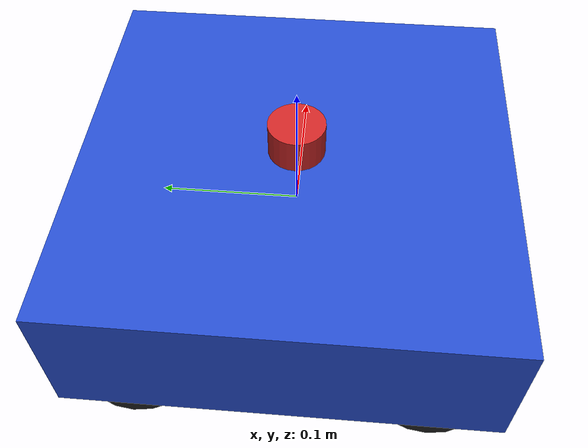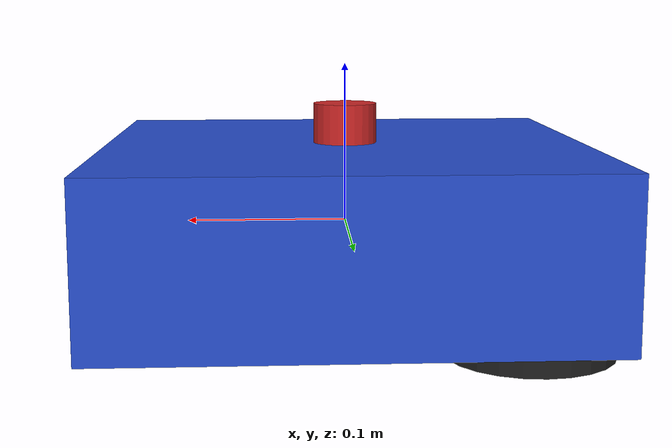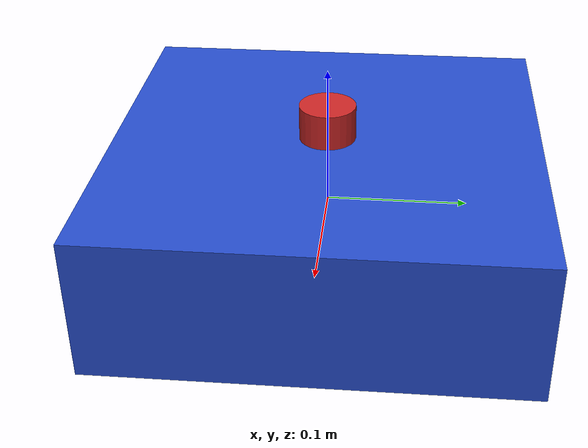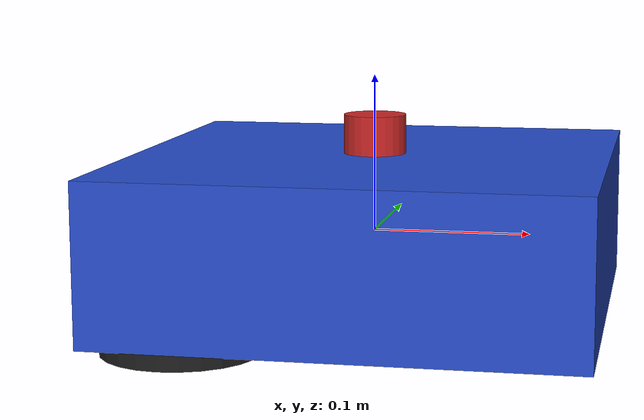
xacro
<?xml version="1.0"?>
<robot xmlns:xacro="http://ros.org/wiki/xacro" name="robot">

  <xacro:property name="prefix" value="robot1_"/>

  <xacro:include filename="$(find robot_description)/model/base/base_link.xacro"/>

  <xacro:include filename="$(find robot_description)/model/wheels/wheels.xacro"/>
  <xacro:include filename="$(find robot_description)/model/joints/wheels_joints.xacro"/>

  <xacro:include filename="$(find robot_description)/model/sensors/lidar.xacro"/>
  <xacro:include filename="$(find robot_description)/model/joints/lidar_joint.xacro"/>

</robot>

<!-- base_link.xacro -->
<robot xmlns:xacro="http://ros.org/wiki/xacro">
  <link name="${prefix}base_link">
    <visual>
      <geometry>
        <box size="0.3 0.3 0.1"/>
      </geometry>
      <material name="blue"/>
    </visual>
    <collision>
      <geometry>
        <box size="0.3 0.3 0.1"/>
      </geometry>
    </collision>
    <inertial>
      <mass value="1.0"/>
      <inertia ixx="0.001" ixy="0.0" ixz="0.0" iyy="0.001" iyz="0.0" izz="0.001"/>
    </inertial>
  </link>
</robot>

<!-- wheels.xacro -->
<robot xmlns:xacro="http://ros.org/wiki/xacro">

  <xacro:property name="wheel_radius" value="0.05"/>
  <xacro:property name="wheel_width" value="0.02"/>

  <link name="${prefix}wheel_left">
    <visual>
      <geometry>
        <cylinder radius="${wheel_radius}" length="${wheel_width}"/>
      </geometry>
      <material name="black"/>
    </visual>
    <collision>
      <geometry>
        <cylinder radius="${wheel_radius}" length="${wheel_width}"/>
      </geometry>
    </collision>
    <inertial>
      <mass value="0.1"/>
      <inertia ixx="0.0001" ixy="0" ixz="0" iyy="0.0001" iyz="0" izz="0.0001"/>
    </inertial>
  </link>

  <link name="${prefix}wheel_right">
    <visual>
      <geometry>
        <cylinder radius="${wheel_radius}" length="${wheel_width}"/>
      </geometry>
      <material name="black"/>
    </visual>
    <collision>
      <geometry>
        <cylinder radius="${wheel_radius}" length="${wheel_width}"/>
      </geometry>
    </collision>
    <inertial>
      <mass value="0.1"/>
      <inertia ixx="0.0001" ixy="0" ixz="0" iyy="0.0001" iyz="0" izz="0.0001"/>
    </inertial>
  </link>

</robot>

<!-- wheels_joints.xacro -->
<robot xmlns:xacro="http://ros.org/wiki/xacro">

  <joint name="${prefix}wheel_left_joint" type="continuous">
    <parent link="${prefix}base_link"/>
    <child link="${prefix}wheel_left"/>
    <origin xyz="-0.1 0.1 -0.05" rpy="0 0 0"/>
    <axis xyz="0 1 0"/>
  </joint>

  <joint name="${prefix}wheel_right_joint" type="continuous">
    <parent link="${prefix}base_link"/>
    <child link="${prefix}wheel_right"/>
    <origin xyz="-0.1 -0.1 -0.05" rpy="0 0 0"/>
    <axis xyz="0 1 0"/>
  </joint>

</robot>

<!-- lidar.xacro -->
<robot xmlns:xacro="http://ros.org/wiki/xacro">
  <link name="${prefix}laser_link">
    <visual>
      <geometry>
        <cylinder radius="0.02" length="0.05"/>
      </geometry>
      <material name="red"/>
    </visual>
    <collision>
      <geometry>
        <cylinder radius="0.02" length="0.05"/>
      </geometry>
    </collision>
    <inertial>
      <mass value="0.05"/>
      <inertia ixx="0.00001" ixy="0" ixz="0" iyy="0.00001" iyz="0" izz="0.00001"/>
    </inertial>
  </link>
</robot>

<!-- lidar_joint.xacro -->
<robot xmlns:xacro="http://ros.org/wiki/xacro">
  <joint name="${prefix}lidar_joint" type="fixed">
    <parent link="${prefix}base_link"/>
    <child link="${prefix}laser_link"/>
    <origin xyz="0 0 0.05" rpy="0 0 0"/>
  </joint>
</robot>
